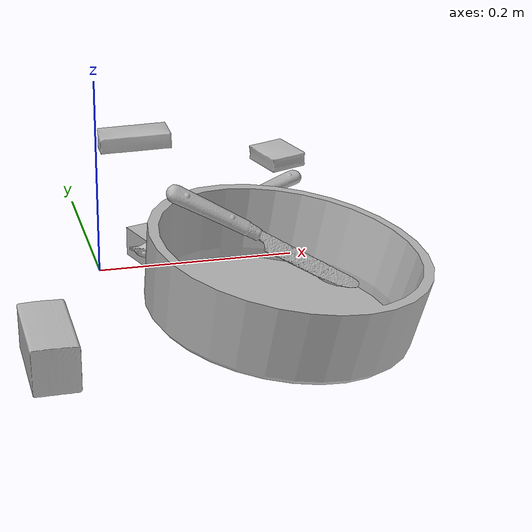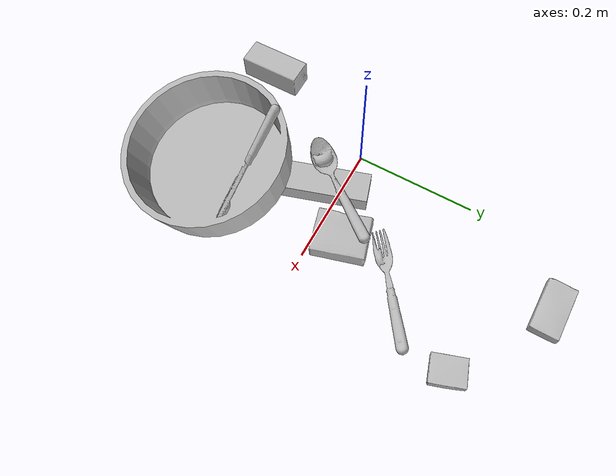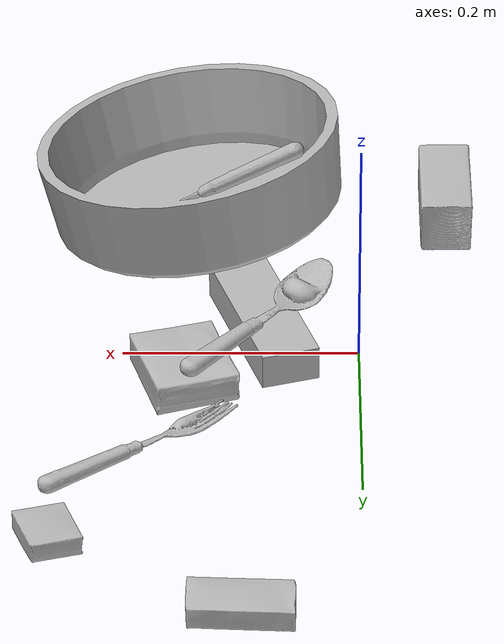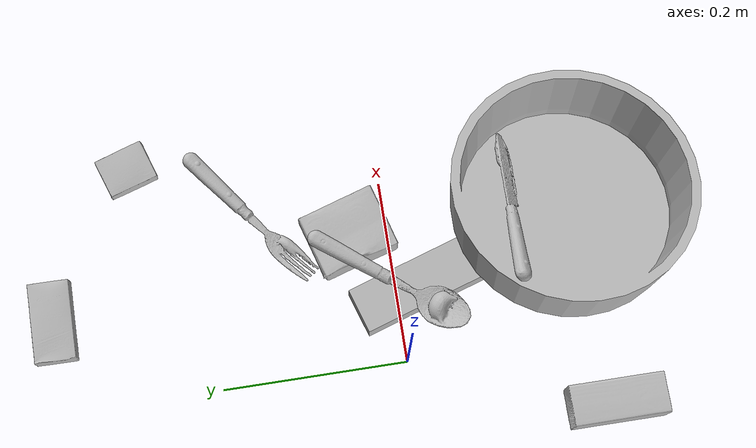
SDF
<sdf version="1.4">
  <world name="default">
    <light name="light1" type="point">
      <pose>0 0 1 0 0 0</pose>
      <diffuse>3 3 3 1</diffuse>
      <specular>3 3 3 1</specular>
    </light>
    <light name="light2" type="point">
      <pose>0 0.5 2 0 0 0</pose>
      <diffuse>1 1 1 1</diffuse>
      <specular>1 1 1 1</specular>
    </light>
    <light name="light3" type="point">
      <pose>0 0.5 2 0 0 0</pose>
      <diffuse>3 3 3 1</diffuse>
      <specular>3 3 3 1</specular>
    </light>
    <scene>
      <ambient>0.7 0.7 0.7</ambient>
    </scene>
    <model name="box11">
      <link name="link_box11">
        <collision name="default">
          <geometry>
            <mesh>
              <uri>model://jenga/collision_meshes/collision.obj</uri>
              <scale>1.0 1.0 1.0</scale>
            </mesh>
          </geometry>
          <surface>
            <friction>
              <ode>
                <mu>0.5</mu>
                <mu2>0.5</mu2>
              </ode>
            </friction>
          <contact>
        <ode>
            <max_vel>0</max_vel>
            <min_depth>0.0001</min_depth>
            <kp>1e8</kp>
        </ode>
    </contact></surface>
        </collision>
        <visual name="default">
          <geometry>
            <mesh>
              <uri>model://jenga/visual_meshes/visual.dae</uri>
              <scale>1.0 1.0 1.0</scale>
            </mesh>
          </geometry>
        </visual>
        <inertial>
          <mass>0.3186844289302826</mass>
          <pose>-2.502855807051674e-07 -0.0001025000965455547 -4.0923401684267446e-05 0.0 -7.34215461761844e-07 0.0</pose>
          <inertia>
            <ixx>8.818771e-05</ixx>
            <iyy>0.0005975576</iyy>
            <izz>0.00063794345</izz>
            <ixy>0</ixy>
            <ixz>0</ixz>
            <iyz>0</iyz>
          </inertia>
        </inertial>
      </link>
      <pose>0.08072543144226074 -0.027503762394189835 0.015000507235527039 4.509163689557302e-05 -2.065209498287234e-05 1.8793512354602864</pose>
    </model>
    <model name="box12">
      <link name="link_box12">
        <collision name="default">
          <geometry>
            <mesh>
              <uri>model://pudding_box/collision_meshes/collision.obj</uri>
              <scale>0.5 0.5 0.5</scale>
            </mesh>
          </geometry>
          <surface>
            <friction>
              <ode>
                <mu>0.5</mu>
                <mu2>0.5</mu2>
              </ode>
            </friction>
          <contact>
        <ode>
            <max_vel>0</max_vel>
            <min_depth>0.0001</min_depth>
            <kp>1e8</kp>
        </ode>
    </contact></surface>
        </collision>
        <visual name="default">
          <geometry>
            <mesh>
              <uri>model://pudding_box/visual_meshes/visual.dae</uri>
              <scale>0.5 0.5 0.5</scale>
            </mesh>
          </geometry>
        </visual>
        <inertial>
          <mass>0.030172348022460938</mass>
          <pose>0.00024474109522998333 0.000403394311433658 -0.00025944141088984907 0.005213102256408686 -0.006603800110353006 0.02007982142872578</pose>
          <inertia>
            <ixx>8.527073e-06</ixx>
            <iyy>5.7370744e-06</iyy>
            <izz>1.259245e-05</izz>
            <ixy>0</ixy>
            <ixz>0</ixz>
            <iyz>0</iyz>
          </inertia>
        </inertial>
      </link>
      <pose>0.2559756934642792 0.2725559175014496 0.009862900711596012 0.022348555413830896 -0.011391624610188212 0.3170466040644387</pose>
    </model>
    <model name="box13">
      <link name="link_box13">
        <collision name="default">
          <geometry>
            <mesh>
              <uri>model://sugar_box/collision_meshes/collision.obj</uri>
              <scale>0.5 0.5 0.5</scale>
            </mesh>
          </geometry>
          <surface>
            <friction>
              <ode>
                <mu>0.5</mu>
                <mu2>0.5</mu2>
              </ode>
            </friction>
          <contact>
        <ode>
            <max_vel>0</max_vel>
            <min_depth>0.0001</min_depth>
            <kp>1e8</kp>
        </ode>
    </contact></surface>
        </collision>
        <visual name="default">
          <geometry>
            <mesh>
              <uri>model://sugar_box/visual_meshes/visual.dae</uri>
              <scale>0.5 0.5 0.5</scale>
            </mesh>
          </geometry>
        </visual>
        <inertial>
          <mass>0.12330043315887451</mass>
          <pose>0.0005171863595023751 1.924554817378521e-05 -0.0001818240125430748 -0.0004046263878582698 0.0010506634058618082 0.0026153787888998363</pose>
          <inertia>
            <ixx>2.5683388e-05</ixx>
            <iyy>8.301401e-05</iyy>
            <izz>9.937768e-05</izz>
            <ixy>0</ixy>
            <ixz>0</ixz>
            <iyz>0</iyz>
          </inertia>
        </inertial>
      </link>
      <pose>0.09947860240936279 0.37193822860717773 0.011399304494261742 0.0007744957129478895 -0.023433017450461627 -0.018374867680976955</pose>
    </model>
    <model name="box21">
      <link name="link_box21">
        <collision name="default">
          <geometry>
            <mesh>
              <uri>model://wood_block/collision_meshes/collision.obj</uri>
              <scale>0.5 0.5 0.5</scale>
            </mesh>
          </geometry>
          <surface>
            <friction>
              <ode>
                <mu>0.5</mu>
                <mu2>0.5</mu2>
              </ode>
            </friction>
          <contact>
        <ode>
            <max_vel>0</max_vel>
            <min_depth>0.0001</min_depth>
            <kp>1e8</kp>
        </ode>
    </contact></surface>
        </collision>
        <visual name="default">
          <geometry>
            <mesh>
              <uri>model://wood_block/visual_meshes/visual.dae</uri>
              <scale>0.5 0.5 0.5</scale>
            </mesh>
          </geometry>
        </visual>
        <inertial>
          <mass>0.22575385868549347</mass>
          <pose>-2.9066577553749084e-06 -0.00028540470520965755 0.00013204291462898254 -0.05220771918194674 -0.005192696213783058 -0.006861377697513623</pose>
          <inertia>
            <ixx>7.552322e-05</ixx>
            <iyy>0.00023857782</iyy>
            <izz>0.00023768542</izz>
            <ixy>0</ixy>
            <ixz>0</ixz>
            <iyz>0</iyz>
          </inertia>
        </inertial>
      </link>
      <pose>-0.07841596752405167 -0.21192051470279694 0.022629264742136 -0.005208613822199957 0.005718762789434945 1.5744203784950406</pose>
    </model>
    <model name="box22">
      <link name="link_box22">
        <collision name="default">
          <geometry>
            <mesh>
              <uri>model://cracker_box/collision_meshes/collision.obj</uri>
              <scale>0.25 0.25 0.25</scale>
            </mesh>
          </geometry>
          <surface>
            <friction>
              <ode>
                <mu>0.5</mu>
                <mu2>0.5</mu2>
              </ode>
            </friction>
          <contact>
        <ode>
            <max_vel>0</max_vel>
            <min_depth>0.0001</min_depth>
            <kp>1e8</kp>
        </ode>
    </contact></surface>
        </collision>
        <visual name="default">
          <geometry>
            <mesh>
              <uri>model://cracker_box/visual_meshes/visual.dae</uri>
              <scale>0.25 0.25 0.25</scale>
            </mesh>
          </geometry>
        </visual>
        <inertial>
          <mass>0.02141544781625271</mass>
          <pose>0.0002366038243053481 6.358561950037256e-05 -0.00042573839891701937 -0.000316207804917531 -0.011106489600095467 0.0025467954686493135</pose>
          <inertia>
            <ixx>3.4044588e-06</ixx>
            <iyy>5.62143e-06</iyy>
            <izz>8.022297e-06</izz>
            <ixy>0</ixy>
            <ixz>0</ixz>
            <iyz>0</iyz>
          </inertia>
        </inertial>
      </link>
      <pose>0.11163601279258728 -0.21345733106136322 0.012789539992809296 -0.061893352155292486 0.12598806472446974 -1.038604803448771</pose>
    </model>
    <model name="box23">
      <link name="link_box23">
        <collision name="default">
          <geometry>
            <mesh>
              <uri>model://gelatin_box/collision_meshes/collision.obj</uri>
              <scale>1.0 1.0 1.0</scale>
            </mesh>
          </geometry>
          <surface>
            <friction>
              <ode>
                <mu>0.5</mu>
                <mu2>0.5</mu2>
              </ode>
            </friction>
          <contact>
        <ode>
            <max_vel>0</max_vel>
            <min_depth>0.0001</min_depth>
            <kp>1e8</kp>
        </ode>
    </contact></surface>
        </collision>
        <visual name="default">
          <geometry>
            <mesh>
              <uri>model://gelatin_box/visual_meshes/visual.dae</uri>
              <scale>1.0 1.0 1.0</scale>
            </mesh>
          </geometry>
        </visual>
        <inertial>
          <mass>0.2518538236618042</mass>
          <pose>0.00043196187471039593 0.00011156871914863586 -0.0003640321083366871 -0.001050372077086074 -0.00475581729336075 0.01644055760821351</pose>
          <inertia>
            <ixx>0.00017778824</ixx>
            <iyy>0.00012699323</iyy>
            <izz>0.00027063338</izz>
            <ixy>0</ixy>
            <ixz>0</ixz>
            <iyz>0</iyz>
          </inertia>
        </inertial>
      </link>
      <pose>0.1474088430404663 0.042098384350538254 0.015168320387601852 0.005596849837960922 -0.007304009383427977 -2.8606877335886383</pose>
    </model>
    <model name="plate1">
      <link name="link_plate1">
        <collision name="default">
          <geometry>
            <mesh>
              <uri>model://pan_tefal/collision_meshes/collision.obj</uri>
              <scale>1.0 1.0 1.0</scale>
            </mesh>
          </geometry>
          <surface>
            <friction>
              <ode>
                <mu>0.5</mu>
                <mu2>0.5</mu2>
              </ode>
            </friction>
          <contact>
        <ode>
            <max_vel>0</max_vel>
            <min_depth>0.0001</min_depth>
            <kp>1e8</kp>
        </ode>
    </contact></surface>
        </collision>
        <visual name="default">
          <geometry>
            <mesh>
              <uri>model://pan_tefal/visual_meshes/visual.dae</uri>
              <scale>1.0 1.0 1.0</scale>
            </mesh>
          </geometry>
        </visual>
        <inertial>
          <mass>1.2783581018447876</mass>
          <pose>-0.0001800234749680385 3.279297015978955e-05 -0.008514934219419956 0.0008190282028794127 -0.0003301398069692291 -0.33185125702417473</pose>
          <inertia>
            <ixx>0.0088244425</ixx>
            <iyy>0.008881334</iyy>
            <izz>0.016244099</izz>
            <ixy>0</ixy>
            <ixz>0</ixz>
            <iyz>0</iyz>
          </inertia>
        </inertial>
      </link>
      <pose>0.1413520872592926 -0.19730649888515472 0.05728420615196228 0.09818056415410871 -0.14553391103074298 2.0610862361287112</pose>
    </model>
    <model name="silverware1">
      <link name="link_silverware1">
        <collision name="default">
          <geometry>
            <mesh>
              <uri>model://knife/collision_meshes/collision.obj</uri>
              <scale>1.0 1.0 1.0</scale>
            </mesh>
          </geometry>
          <surface>
            <friction>
              <ode>
                <mu>0.5</mu>
                <mu2>0.5</mu2>
              </ode>
            </friction>
          <contact>
        <ode>
            <max_vel>0</max_vel>
            <min_depth>0.0001</min_depth>
            <kp>1e8</kp>
        </ode>
    </contact></surface>
        </collision>
        <visual name="default">
          <geometry>
            <mesh>
              <uri>model://knife/visual_meshes/visual.dae</uri>
              <scale>1.0 1.0 1.0</scale>
            </mesh>
          </geometry>
        </visual>
        <inertial>
          <mass>0.028752580285072327</mass>
          <pose>-0.023785240948200226 0.0015275123296305537 5.0620223191799596e-05 0.07306965696526056 0.017248417457013686 -0.00740982691157592</pose>
          <inertia>
            <ixx>8.161146e-07</ixx>
            <iyy>0.000110462766</iyy>
            <izz>0.00011072555</izz>
            <ixy>0</ixy>
            <ixz>0</ixz>
            <iyz>0</iyz>
          </inertia>
        </inertial>
      </link>
      <pose>0.13861793279647827 -0.13249513506889343 0.07250561565160751 0.7489742545237238 0.5406408158918435 -0.08568705718748512</pose>
    </model>
    <model name="silverware2">
      <link name="link_silverware2">
        <collision name="default">
          <geometry>
            <mesh>
              <uri>model://spoon/collision_meshes/collision.obj</uri>
              <scale>1.0 1.0 1.0</scale>
            </mesh>
          </geometry>
          <surface>
            <friction>
              <ode>
                <mu>0.5</mu>
                <mu2>0.5</mu2>
              </ode>
            </friction>
          <contact>
        <ode>
            <max_vel>0</max_vel>
            <min_depth>0.0001</min_depth>
            <kp>1e8</kp>
        </ode>
    </contact></surface>
        </collision>
        <visual name="default">
          <geometry>
            <mesh>
              <uri>model://spoon/visual_meshes/visual.dae</uri>
              <scale>1.0 1.0 1.0</scale>
            </mesh>
          </geometry>
        </visual>
        <inertial>
          <mass>0.03275385871529579</mass>
          <pose>-0.005526320543140173 -0.0016034176805987954 -0.0007271653157658875 0.03521620701241808 -0.03906583474323888 0.006150609342160928</pose>
          <inertia>
            <ixx>1.8218228e-06</ixx>
            <iyy>0.00012462735</iyy>
            <izz>0.0001255258</izz>
            <ixy>0</ixy>
            <ixz>0</ixz>
            <iyz>0</iyz>
          </inertia>
        </inertial>
      </link>
      <pose>0.08836908638477325 0.005340138450264931 0.03799828886985779 0.04397310282192499 0.039513955925309145 -2.2282556909476563</pose>
    </model>
    <model name="silverware3">
      <link name="link_silverware3">
        <collision name="default">
          <geometry>
            <mesh>
              <uri>model://fork/collision_meshes/collision.obj</uri>
              <scale>1.0 1.0 1.0</scale>
            </mesh>
          </geometry>
          <surface>
            <friction>
              <ode>
                <mu>0.5</mu>
                <mu2>0.5</mu2>
              </ode>
            </friction>
          <contact>
        <ode>
            <max_vel>0</max_vel>
            <min_depth>0.0001</min_depth>
            <kp>1e8</kp>
        </ode>
    </contact></surface>
        </collision>
        <visual name="default">
          <geometry>
            <mesh>
              <uri>model://fork/visual_meshes/visual.dae</uri>
              <scale>1.0 1.0 1.0</scale>
            </mesh>
          </geometry>
        </visual>
        <inertial>
          <mass>0.015051598660647869</mass>
          <pose>-0.029570037499070168 0.00046588244731538 0.0003218861238565296 -0.013550825752082697 -0.010977832944741694 0.014453903400543814</pose>
          <inertia>
            <ixx>5.2764364e-07</ixx>
            <iyy>3.9295395e-05</iyy>
            <izz>3.953141e-05</izz>
            <ixy>0</ixy>
            <ixz>0</ixz>
            <iyz>0</iyz>
          </inertia>
        </inertial>
      </link>
      <pose>0.1856590360403061 0.14746412634849548 0.005694945342838764 -0.17698636367240272 0.02551818699508962 -2.4955489655926835</pose>
    </model>
  <physics type="ode">
      <max_contacts>50</max_contacts>
      <ode>
        <solver>
          <type>quick</type>
          <iters>75</iters>
        </solver>
        <constraints>
          <contact_max_correcting_vel>0</contact_max_correcting_vel>
          <contact_surface_layer>0</contact_surface_layer>
        </constraints>
      </ode>
    </physics></world>
</sdf>
